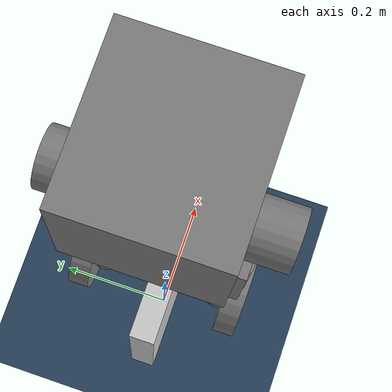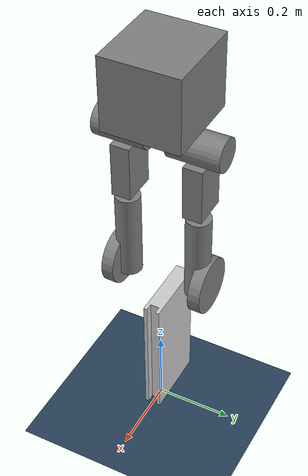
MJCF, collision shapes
<mujoco model="GOAT_on_Stand">
  <compiler angle="radian" meshdir="../meshes/"/>

  <option timestep="0.005" integrator="implicit" solver="PGS" iterations="8"/>

  <size nkey="1"/>

  <visual>
    <global azimuth="120" elevation="-20"/>
    <headlight ambient="0.3 0.3 0.3" diffuse="0.6 0.6 0.6" specular="0 0 0"/>
    <rgba haze="0.15 0.25 0.35 1"/>
  </visual>

  <default>
    <geom friction="1 0 0"/>
    <general ctrllimited="true"/>
  </default>

  <asset>
    <texture type="2d" colorspace="auto" name="groundplane" builtin="checker" mark="edge" rgb1="0.2 0.3 0.4" rgb2="0.1 0.2 0.3" markrgb="0.8 0.8 0.8" width="512" height="512"/>
    <material name="groundplane" texture="groundplane" texuniform="true" texrepeat="5 5" reflectance="0.2"/>
    <material name="orange" rgba="1 0.423 0.039 1"/>
    <material name="black" rgba="0.792 0.819 0.933 1"/>
    <material name="white"/>
    <material name="jig_material" rgba="0.8 0.8 0.8 1"/>
    <mesh name="base_Link" content_type="model/stl" file="base_Link_simple.stl"/>
    <mesh name="hip_L_Link" content_type="model/stl" file="hip_L_Link.stl"/>
    <mesh name="hip_R_Link" content_type="model/stl" file="hip_R_Link.stl"/>
    <mesh name="thigh_L_Link" content_type="model/stl" file="thigh_L_Link.stl"/>
    <mesh name="thigh_R_Link" content_type="model/stl" file="thigh_R_Link.stl"/>
    <mesh name="calf_L_Link" content_type="model/stl" file="calf_L_Link.stl"/>
    <mesh name="calf_R_Link" content_type="model/stl" file="calf_R_Link.stl"/>
    <mesh name="wheel_L_Link" content_type="model/stl" file="wheel_L_Link.stl"/>
    <mesh name="wheel_R_Link" content_type="model/stl" file="wheel_R_Link.stl"/>
    <mesh name="jig_mesh" content_type="model/stl" file="GOAT_stand7mm35cm.stl" scale="0.8 1 1"/>
  </asset>

  <worldbody>
    <geom name="floor" size="0 0 1" type="plane" material="groundplane"/>
    <light pos="0 0 5" dir="0 0 -1" type="directional" diffuse="0.8 0.8 0.8" specular="0.2 0.2 0.2"/>
    <light pos="0 0 1.5" dir="0 0 -1" type="directional"/>
    <body name="base_Link" pos="0 0 1">
      <inertial pos="-0.009521 1.6e-05 -0.072346" quat="-0.00041221 0.916858 -0.000330604 0.399213" mass="2.818" diaginertia="0.0271665 0.023477 0.0143241"/>
      <joint name="root" type="free"/>
      <geom pos="-0.1235 0 0.0155" type="mesh" contype="0" conaffinity="0" group="1" material="black" mesh="base_Link"/>
      <geom size="0.107 0.1 0.095" pos="-0.02 0 -0.015" type="box" group="3"/>
      <site name="imu_site" pos="0 0 0" size="0.01" rgba="1 0 0 1"/>
      <body name="hip_L_Link" pos="0.038386 0.094233 -0.152597">
        <inertial pos="-0.048092 -0.038296 -0.000162" quat="0.464323 0.446665 0.535182 0.546329" mass="0.32" diaginertia="0.000217909 0.000197743 0.000141448"/>
        <joint name="hip_L_Joint" pos="0 0 0" axis="-1 0 0" range="-1.7453 1.0123" armature="0.001"/>
        <geom type="mesh" contype="0" conaffinity="0" group="1" material="black" mesh="hip_L_Link"/>
        <geom size="0.042 0.0675" pos="-0.0535 0 0" quat="0.707388 0.706825 0 0" type="cylinder" group="3"/>
        <body name="thigh_L_Link" pos="-0.054 -0.017 0">
          <inertial pos="-0.00199 0.042368 -0.035253" quat="0.980558 -0.0938873 0.00229116 -0.172297" mass="0.483" diaginertia="0.00242914 0.00240925 0.000310907"/>
          <joint name="thigh_L_Joint" pos="0 0 0" axis="0 1 0" range="-0.384 2.0071" armature="0.001"/>
          <geom type="mesh" contype="0" conaffinity="0" group="1" material="white" mesh="thigh_L_Link"/>
          <geom size="0.045 0.025 0.0725" pos="-0.011 0.016 -0.116" type="box" group="3"/>
          <body name="calf_L_Link" pos="0 0.018 -0.205">
            <inertial pos="0.002023 0.000639 -0.162465" quat="0.710905 0.0109488 0.00611851 0.703176" mass="0.299" diaginertia="0.00152607 0.0014868 9.43011e-05"/>
            <joint name="knee_L_Joint" pos="0 0 0" axis="0 -1 0" range="-0.523599 2.3387" armature="0.001"/>
            <geom type="mesh" contype="0" conaffinity="0" group="1" material="black" mesh="calf_L_Link"/>
            <geom size="0.0325 0.1165" pos="0 0 -0.116" type="cylinder" group="3"/>
            <body name="wheel_L_Link" pos="0 0.016555 -0.2">
              <inertial pos="0 0.007264 -2e-06" quat="0.65328 0.270599 0.270597 0.653283" mass="0.212" diaginertia="0.000647 0.000338008 0.000337992"/>
              <joint name="wheel_L_Joint" pos="0 0 0" axis="0 1 0" armature="0.001"/>
              <geom type="mesh" contype="0" conaffinity="0" group="1" material="orange" mesh="wheel_L_Link"/>
              <geom name="wheel_L_collision" size="0.07275 0.016" pos="0 0.007 0" quat="0.707141 0.707073 0 0" type="cylinder" group="3"/>
            </body>
          </body>
        </body>
      </body>
      <body name="hip_R_Link" pos="0.038386 -0.094233 -0.152597">
        <inertial pos="-0.048092 0.038296 -0.000162" quat="0.540874 0.536154 0.450722 0.465666" mass="0.32" diaginertia="0.00021695 0.000197017 0.000141033"/>
        <joint name="hip_R_Joint" pos="0 0 0" axis="-1 0 0" range="-1.0123 1.7453" armature="0.001"/>
        <geom type="mesh" contype="0" conaffinity="0" group="1" material="black" mesh="hip_R_Link"/>
        <geom size="0.042 0.0675" pos="-0.0535 0 0" quat="0.707388 0.706825 0 0" type="cylinder" group="3"/>
        <body name="thigh_R_Link" pos="-0.054 0.017 0">
          <inertial pos="-0.00199 -0.042368 -0.035253" quat="0.980558 0.0938873 0.00229116 0.172297" mass="0.483" diaginertia="0.00242914 0.00240925 0.000310907"/>
          <joint name="thigh_R_Joint" pos="0 0 0" axis="0 -1 0" range="-2.0071 0.384" armature="0.001"/>
          <geom type="mesh" contype="0" conaffinity="0" group="1" material="white" mesh="thigh_R_Link"/>
          <geom size="0.045 0.025 0.0725" pos="-0.011 -0.016 -0.116" type="box" group="3"/>
          <body name="calf_R_Link" pos="0 -0.018 -0.205">
            <inertial pos="0.002023 -0.000639 -0.162465" quat="0.703176 0.00611851 0.0109488 0.710905" mass="0.299" diaginertia="0.00152607 0.0014868 9.43011e-05"/>
            <joint name="knee_R_Joint" pos="0 0 0" axis="0 1 0" range="-2.3387 0.523599" armature="0.001"/>
            <geom type="mesh" contype="0" conaffinity="0" group="1" material="black" mesh="calf_R_Link"/>
            <geom size="0.0325 0.1165" pos="0 0 -0.116" type="cylinder" group="3"/>
            <body name="wheel_R_Link" pos="0 -0.016555 -0.2">
              <inertial pos="0 -0.007264 -2e-06" quat="0.653283 0.270597 0.270599 0.65328" mass="0.212" diaginertia="0.000647 0.000338008 0.000337992"/>
              <joint name="wheel_R_Joint" pos="0 0 0" axis="0 -1 0" armature="0.001"/>
              <geom type="mesh" contype="0" conaffinity="0" group="1" material="orange" mesh="wheel_R_Link"/>
              <geom name="wheel_R_collision" size="0.07275 0.016" pos="0 -0.007 0" quat="0.707141 0.707073 0 0" type="cylinder" group="3"/>
            </body>
          </body>
        </body>
      </body>
    </body>
    <body name="jig_link" pos="-0.04 0 0">
      <inertial pos="0 0 0" mass="10" diaginertia="0.05 0.05 0.05"/>
      <geom name="jig_geom" quat="0.707107 0 0 -0.707107" type="mesh" material="jig_material" mesh="jig_mesh"/>
    </body>
  </worldbody>

  <contact>
    <pair geom1="floor" geom2="wheel_L_collision" name="floor_wheel_L" friction="1 1 0 0 0"/>
    <pair geom1="floor" geom2="wheel_R_collision" name="floor_wheel_R" friction="1 1 0 0 0"/>
    <exclude body1="base_Link" body2="hip_L_Link"/>
    <exclude body1="base_Link" body2="thigh_L_Link"/>
    <exclude body1="base_Link" body2="calf_L_Link"/>
    <exclude body1="base_Link" body2="wheel_L_Link"/>
    <exclude body1="base_Link" body2="hip_R_Link"/>
    <exclude body1="base_Link" body2="thigh_R_Link"/>
    <exclude body1="base_Link" body2="calf_R_Link"/>
    <exclude body1="base_Link" body2="wheel_R_Link"/>
    <exclude body1="hip_L_Link" body2="calf_L_Link"/>
    <exclude body1="hip_L_Link" body2="wheel_L_Link"/>
    <exclude body1="hip_L_Link" body2="hip_R_Link"/>
    <exclude body1="hip_L_Link" body2="thigh_R_Link"/>
    <exclude body1="hip_L_Link" body2="calf_R_Link"/>
    <exclude body1="hip_L_Link" body2="wheel_R_Link"/>
    <exclude body1="thigh_L_Link" body2="wheel_L_Link"/>
    <exclude body1="thigh_L_Link" body2="hip_R_Link"/>
    <exclude body1="thigh_L_Link" body2="thigh_R_Link"/>
    <exclude body1="thigh_L_Link" body2="calf_R_Link"/>
    <exclude body1="thigh_L_Link" body2="wheel_R_Link"/>
    <exclude body1="calf_L_Link" body2="hip_R_Link"/>
    <exclude body1="calf_L_Link" body2="thigh_R_Link"/>
    <exclude body1="calf_L_Link" body2="calf_R_Link"/>
    <exclude body1="calf_L_Link" body2="wheel_R_Link"/>
    <exclude body1="wheel_L_Link" body2="hip_R_Link"/>
    <exclude body1="wheel_L_Link" body2="thigh_R_Link"/>
    <exclude body1="wheel_L_Link" body2="calf_R_Link"/>
    <exclude body1="wheel_L_Link" body2="wheel_R_Link"/>
    <exclude body1="hip_R_Link" body2="calf_R_Link"/>
    <exclude body1="hip_R_Link" body2="wheel_R_Link"/>
    <exclude body1="thigh_R_Link" body2="wheel_R_Link"/>
  </contact>

  <actuator>
    <general name="hip_L_Joint" joint="hip_L_Joint" ctrlrange="-1.7453 1.0123" forcelimited="true" forcerange="-4.5 4.5" biastype="affine" gainprm="3" biasprm="0 -3 -0.5"/>
    <general name="thigh_L_Joint" joint="thigh_L_Joint" ctrlrange="-0.384 2.0071" forcelimited="true" forcerange="-4.5 4.5" biastype="affine" gainprm="3" biasprm="0 -3 -0.5"/>
    <general name="knee_L_Joint" joint="knee_L_Joint" ctrlrange="-0.523599 2.3387" forcelimited="true" forcerange="-9 9" biastype="affine" gainprm="3" biasprm="0 -3 -0.5"/>
    <general name="wheel_L_Joint" joint="wheel_L_Joint" ctrlrange="-15 15" forcelimited="true" forcerange="-2.5 2.5" biastype="affine" gainprm="0.002" biasprm="0 0 -0.002"/>
    <general name="hip_R_Joint" joint="hip_R_Joint" ctrlrange="-1.0123 1.7453" forcelimited="true" forcerange="-4.5 4.5" biastype="affine" gainprm="3" biasprm="0 -3 -0.5"/>
    <general name="thigh_R_Joint" joint="thigh_R_Joint" ctrlrange="-2.0071 0.384" forcelimited="true" forcerange="-4.5 4.5" biastype="affine" gainprm="3" biasprm="0 -3 -0.5"/>
    <general name="knee_R_Joint" joint="knee_R_Joint" ctrlrange="-2.3387 0.523599" forcelimited="true" forcerange="-9 9" biastype="affine" gainprm="3" biasprm="0 -3 -0.5"/>
    <general name="wheel_R_Joint" joint="wheel_R_Joint" ctrlrange="-15 15" forcelimited="true" forcerange="-2.5 2.5" biastype="affine" gainprm="0.002" biasprm="0 0 -0.002"/>
  </actuator>

  <sensor>
    <accelerometer site="imu_site" name="imu_acc"/>
    <gyro site="imu_site" name="imu_gyro"/>
    <magnetometer site="imu_site" name="imu_mag"/>
  </sensor>

  <keyframe>
    <key name="home" qpos="0 0 0.46 1 0 0 0 0 1.0942 1.8852 0 0 -1.0942 -1.8852 0" ctrl="0 1.0942 1.8852 0 0 -1.0942 -1.8852 0"/>
  </keyframe>
</mujoco>
